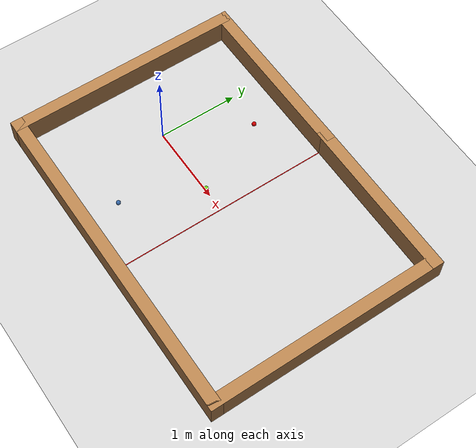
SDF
<sdf version="1.7">
 <world name="default">
  <light name="sun" type="directional">
   <pose>0 0 10 0 -0 0</pose>
   <diffuse>0.8 0.8 0.8 1</diffuse>
   <specular>0.2 0.2 0.2 1</specular>
   <attenuation>
    <range>1000</range>
    <constant>0.9</constant>
    <linear>0.01</linear>
    <quadratic>0.001</quadratic>
   </attenuation>
   <direction>-0.5 0.1 -0.9</direction>
   <spot><inner_angle>0</inner_angle><outer_angle>0</outer_angle><falloff>0</falloff></spot>
  </light>
  <model name="ground_plane">
   <static>1</static>
   <link name="link">
    <collision name="collision">
     <geometry><plane><normal>0 0 1</normal><size>100 100</size></plane></geometry>
     <surface>
      <contact><collide_bitmask>65535</collide_bitmask></contact>
      <friction><ode><mu>100</mu><mu2>50</mu2></ode></friction>
     </surface>
    </collision>
    <visual name="visual">
     <cast_shadows>0</cast_shadows>
     <geometry><plane><normal>0 0 1</normal><size>100 100</size></plane></geometry>
     <material>
      <script><uri>file://media/materials/scripts/gazebo.material</uri><name>Gazebo/Grey</name></script>
     </material>
    </visual>
   </link>
  </model>
  <gravity>0 0 -9.8</gravity>
  <magnetic_field>6e-06 2.3e-05 -4.2e-05</magnetic_field>
  <atmosphere type="adiabatic"/>
  <physics type="ode">
   <max_step_size>0.001</max_step_size>
   <real_time_factor>1</real_time_factor>
   <real_time_update_rate>1000</real_time_update_rate>
  </physics>
  <scene><ambient>0.4 0.4 0.4 1</ambient><background>0.7 0.7 0.7 1</background><shadows>1</shadows></scene>
  <spherical_coordinates>
   <surface_model>EARTH_WGS84</surface_model>
   <latitude_deg>0</latitude_deg>
   <longitude_deg>0</longitude_deg>
   <elevation>0</elevation>
   <heading_deg>0</heading_deg>
  </spherical_coordinates>
  <model name="debi_map2">
   <pose>1.14483 0.030178 0 0 -0 0</pose>
   <link name="Wall_0">
    <collision name="Wall_0_Collision">
     <geometry><box><size>3 0.15 0.31</size></box></geometry>
     <pose>0 0 0.155 0 -0 0</pose>
    </collision>
    <visual name="Wall_0_Visual">
     <pose>0 0 0.155 0 -0 0</pose>
     <geometry><box><size>3 0.15 0.31</size></box></geometry>
     <material>
      <script><uri>file://media/materials/scripts/gazebo.material</uri><name>Gazebo/Wood</name></script>
      <ambient>1 1 1 1</ambient>
     </material>
     <meta><layer>0</layer></meta>
    </visual>
    <pose>-2.02483 -0.005178 0 0 -0 1.5708</pose>
   </link>
   <link name="Wall_16">
    <collision name="Wall_16_Collision">
     <geometry><box><size>2.25 0.15 0.31</size></box></geometry>
     <pose>0 0 0.155 0 -0 0</pose>
    </collision>
    <visual name="Wall_16_Visual">
     <pose>0 0 0.155 0 -0 0</pose>
     <geometry><box><size>2.25 0.15 0.31</size></box></geometry>
     <material>
      <script><uri>file://media/materials/scripts/gazebo.material</uri><name>Gazebo/Wood</name></script>
      <ambient>1 1 1 1</ambient>
     </material>
     <meta><layer>0</layer></meta>
    </visual>
    <pose>-0.974828 1.42482 0 0 -0 0.004762</pose>
   </link>
   <link name="Wall_19">
    <collision name="Wall_19_Collision">
     <geometry><box><size>2.95 0.01 0.001</size></box></geometry>
     <pose>0 0 0.0005 0 -0 0</pose>
    </collision>
    <visual name="Wall_19_Visual">
     <pose>0 0 0.0005 0 -0 0</pose>
     <geometry><box><size>2.95 0.01 0.001</size></box></geometry>
     <material>
      <script><uri>file://media/materials/scripts/gazebo.material</uri><name>Gazebo/Grey</name></script>
      <ambient>0.8 0 0 1</ambient>
     </material>
     <meta><layer>0</layer></meta>
    </visual>
    <pose>0.075172 0.004822 0 0 -0 -1.5708</pose>
   </link>
   <link name="Wall_21">
    <collision name="Wall_21_Collision">
     <geometry><box><size>2.1 0.15 0.31</size></box></geometry>
     <pose>0 0 0.155 0 -0 0</pose>
    </collision>
    <visual name="Wall_21_Visual">
     <pose>0 0 0.155 0 -0 0</pose>
     <geometry><box><size>2.1 0.15 0.31</size></box></geometry>
     <material>
      <script><uri>file://media/materials/scripts/gazebo.material</uri><name>Gazebo/Wood</name></script>
      <ambient>1 1 1 1</ambient>
     </material>
     <meta><layer>0</layer></meta>
    </visual>
    <pose>1.05017 1.42982 0 0 -0 0</pose>
   </link>
   <link name="Wall_4">
    <collision name="Wall_4_Collision">
     <geometry><box><size>3.01 0.15 0.31</size></box></geometry>
     <pose>0 0 0.155 0 -0 0</pose>
    </collision>
    <visual name="Wall_4_Visual">
     <pose>0 0 0.155 0 -0 0</pose>
     <geometry><box><size>3.01 0.15 0.31</size></box></geometry>
     <material>
      <script><uri>file://media/materials/scripts/gazebo.material</uri><name>Gazebo/Wood</name></script>
      <ambient>1 1 1 1</ambient>
     </material>
     <meta><layer>0</layer></meta>
    </visual>
    <pose>2.02517 -0.000178 0 0 -0 -1.5708</pose>
   </link>
   <link name="Wall_5">
    <collision name="Wall_5_Collision">
     <geometry><box><size>4.2 0.15 0.31</size></box></geometry>
     <pose>0 0 0.155 0 -0 0</pose>
    </collision>
    <visual name="Wall_5_Visual">
     <pose>0 0 0.155 0 -0 0</pose>
     <geometry><box><size>4.2 0.15 0.31</size></box></geometry>
     <material>
      <script><uri>file://media/materials/scripts/gazebo.material</uri><name>Gazebo/Wood</name></script>
      <ambient>1 1 1 1</ambient>
     </material>
     <meta><layer>0</layer></meta>
    </visual>
    <pose>0.000172 -1.43018 0 0 -0 3.14159</pose>
   </link>
   <static>1</static>
  </model>
  <model name="debi_ball_red">
   <link name="link">
    <inertial>
     <mass>0.005</mass>
     <inertia><ixx>0.0001</ixx><ixy>0</ixy><ixz>0</ixz><iyy>0.0001</iyy><iyz>0</iyz><izz>0.0001</izz></inertia>
    </inertial>
    <visual name="visual">
     <geometry><sphere><radius>0.0275</radius></sphere></geometry>
     <material>
      <script><name>Gazebo/Grey</name><uri>file://media/materials/scripts/gazebo.material</uri></script>
      <shader type="pixel"><normal_map>__default__</normal_map></shader>
      <ambient>0.8 0 0 1</ambient>
      <diffuse>0.7 0.7 0.7 1</diffuse>
      <specular>0.01 0.01 0.01 1</specular>
      <emissive>0 0 0 1</emissive>
     </material>
    </visual>
    <collision name="collision">
     <geometry><sphere><radius>0.0275</radius></sphere></geometry>
     <surface>
      <friction>
       <ode><mu>1</mu><mu2>1</mu2><fdir1>0 0 0</fdir1><slip1>0</slip1><slip2>0</slip2></ode>
       <torsional>
        <coefficient>1</coefficient>
        <patch_radius>0</patch_radius>
        <surface_radius>0</surface_radius>
        <use_patch_radius>1</use_patch_radius>
        <ode><slip>0</slip></ode>
       </torsional>
      </friction>
      <bounce><restitution_coefficient>0</restitution_coefficient><threshold>1e+06</threshold></bounce>
      <contact>
       <collide_without_contact>0</collide_without_contact>
       <collide_without_contact_bitmask>1</collide_without_contact_bitmask>
       <collide_bitmask>1</collide_bitmask>
       <ode>
        <soft_cfm>0</soft_cfm>
        <soft_erp>0.2</soft_erp>
        <kp>1e+13</kp>
        <kd>1</kd>
        <max_vel>0.01</max_vel>
        <min_depth>0</min_depth>
       </ode>
       <bullet>
        <split_impulse>1</split_impulse>
        <split_impulse_penetration_threshold>-0.01</split_impulse_penetration_threshold>
        <soft_cfm>0</soft_cfm>
        <soft_erp>0.2</soft_erp>
        <kp>1e+13</kp>
        <kd>1</kd>
       </bullet>
      </contact>
     </surface>
    </collision>
   </link>
   <static>0</static>
   <pose>0.476656 0.979265 0.0275 0 -0 0</pose>
  </model>
  <model name="debi_ball_green">
   <link name="link">
    <inertial>
     <mass>0.005</mass>
     <inertia><ixx>0.0001</ixx><ixy>0</ixy><ixz>0</ixz><iyy>0.0001</iyy><iyz>0</iyz><izz>0.0001</izz></inertia>
    </inertial>
    <visual name="visual">
     <geometry><sphere><radius>0.0275</radius></sphere></geometry>
     <material>
      <script><name>Gazebo/Grey</name><uri>file://media/materials/scripts/gazebo.material</uri></script>
      <shader type="pixel"><normal_map>__default__</normal_map></shader>
      <ambient>0.451 0.824 0.086 1</ambient>
      <diffuse>0.7 0.7 0.7 1</diffuse>
      <specular>0.01 0.01 0.01 1</specular>
      <emissive>0 0 0 1</emissive>
     </material>
    </visual>
    <collision name="collision">
     <geometry><sphere><radius>0.0275</radius></sphere></geometry>
     <surface>
      <friction>
       <ode><mu>1</mu><mu2>1</mu2><fdir1>0 0 0</fdir1><slip1>0</slip1><slip2>0</slip2></ode>
       <torsional>
        <coefficient>1</coefficient>
        <patch_radius>0</patch_radius>
        <surface_radius>0</surface_radius>
        <use_patch_radius>1</use_patch_radius>
        <ode><slip>0</slip></ode>
       </torsional>
      </friction>
      <bounce><restitution_coefficient>0</restitution_coefficient><threshold>1e+06</threshold></bounce>
      <contact>
       <collide_without_contact>0</collide_without_contact>
       <collide_without_contact_bitmask>1</collide_without_contact_bitmask>
       <collide_bitmask>1</collide_bitmask>
       <ode>
        <soft_cfm>0</soft_cfm>
        <soft_erp>0.2</soft_erp>
        <kp>1e+13</kp>
        <kd>1</kd>
        <max_vel>0.01</max_vel>
        <min_depth>0</min_depth>
       </ode>
       <bullet>
        <split_impulse>1</split_impulse>
        <split_impulse_penetration_threshold>-0.01</split_impulse_penetration_threshold>
        <soft_cfm>0</soft_cfm>
        <soft_erp>0.2</soft_erp>
        <kp>1e+13</kp>
        <kd>1</kd>
       </bullet>
      </contact>
     </surface>
    </collision>
   </link>
   <static>0</static>
   <pose>0.901565 0.014131 0.0275 0 -0 0</pose>
  </model>
  <model name="debi_ball_blue">
   <link name="link">
    <inertial>
     <mass>0.005</mass>
     <inertia><ixx>0.0001</ixx><ixy>0</ixy><ixz>0</ixz><iyy>0.0001</iyy><iyz>0</iyz><izz>0.0001</izz></inertia>
    </inertial>
    <visual name="visual">
     <geometry><sphere><radius>0.0275</radius></sphere></geometry>
     <material>
      <script><name>Gazebo/Grey</name><uri>file://media/materials/scripts/gazebo.material</uri></script>
      <shader type="pixel"><normal_map>__default__</normal_map></shader>
      <ambient>0.204 0.396 0.643 1</ambient>
      <diffuse>0.7 0.7 0.7 1</diffuse>
      <specular>0.01 0.01 0.01 1</specular>
      <emissive>0 0 0 1</emissive>
     </material>
    </visual>
    <collision name="collision">
     <geometry><sphere><radius>0.0275</radius></sphere></geometry>
     <surface>
      <friction>
       <ode><mu>1</mu><mu2>1</mu2><fdir1>0 0 0</fdir1><slip1>0</slip1><slip2>0</slip2></ode>
       <torsional>
        <coefficient>1</coefficient>
        <patch_radius>0</patch_radius>
        <surface_radius>0</surface_radius>
        <use_patch_radius>1</use_patch_radius>
        <ode><slip>0</slip></ode>
       </torsional>
      </friction>
      <bounce><restitution_coefficient>0</restitution_coefficient><threshold>1e+06</threshold></bounce>
      <contact>
       <collide_without_contact>0</collide_without_contact>
       <collide_without_contact_bitmask>1</collide_without_contact_bitmask>
       <collide_bitmask>1</collide_bitmask>
       <ode>
        <soft_cfm>0</soft_cfm>
        <soft_erp>0.2</soft_erp>
        <kp>1e+13</kp>
        <kd>1</kd>
        <max_vel>0.01</max_vel>
        <min_depth>0</min_depth>
       </ode>
       <bullet>
        <split_impulse>1</split_impulse>
        <split_impulse_penetration_threshold>-0.01</split_impulse_penetration_threshold>
        <soft_cfm>0</soft_cfm>
        <soft_erp>0.2</soft_erp>
        <kp>1e+13</kp>
        <kd>1</kd>
       </bullet>
      </contact>
     </surface>
    </collision>
   </link>
   <static>0</static>
   <pose>0.504567 -0.920681 0.0275 0 -0 0</pose>
  </model>
  <light name="user_point_light_0" type="point">
   <pose>1.23061 0.00129 1 0 -0 0</pose>
   <diffuse>0.5 0.5 0.5 1</diffuse>
   <specular>0.1 0.1 0.1 1</specular>
   <attenuation>
    <range>20</range>
    <constant>0.5</constant>
    <linear>0.01</linear>
    <quadratic>0.001</quadratic>
   </attenuation>
   <cast_shadows>0</cast_shadows>
   <direction>0 0 -1</direction>
  </light>
 </world>
</sdf>
